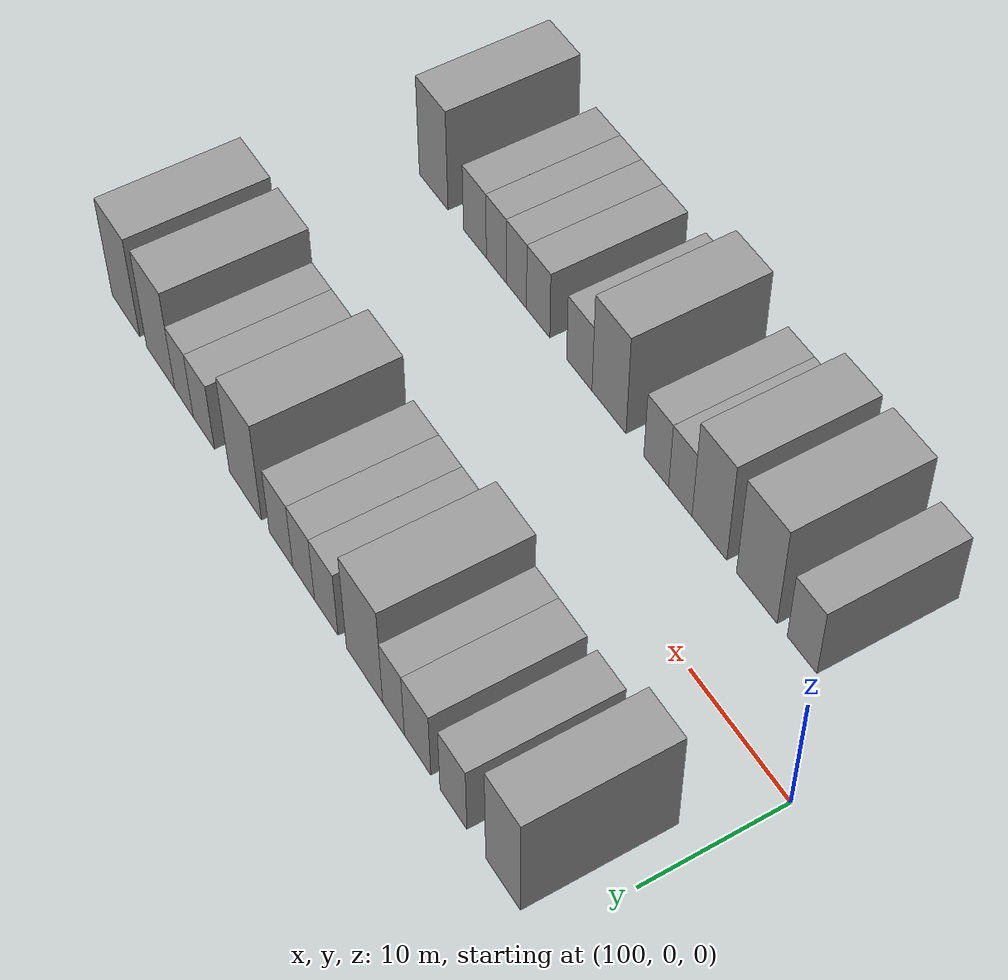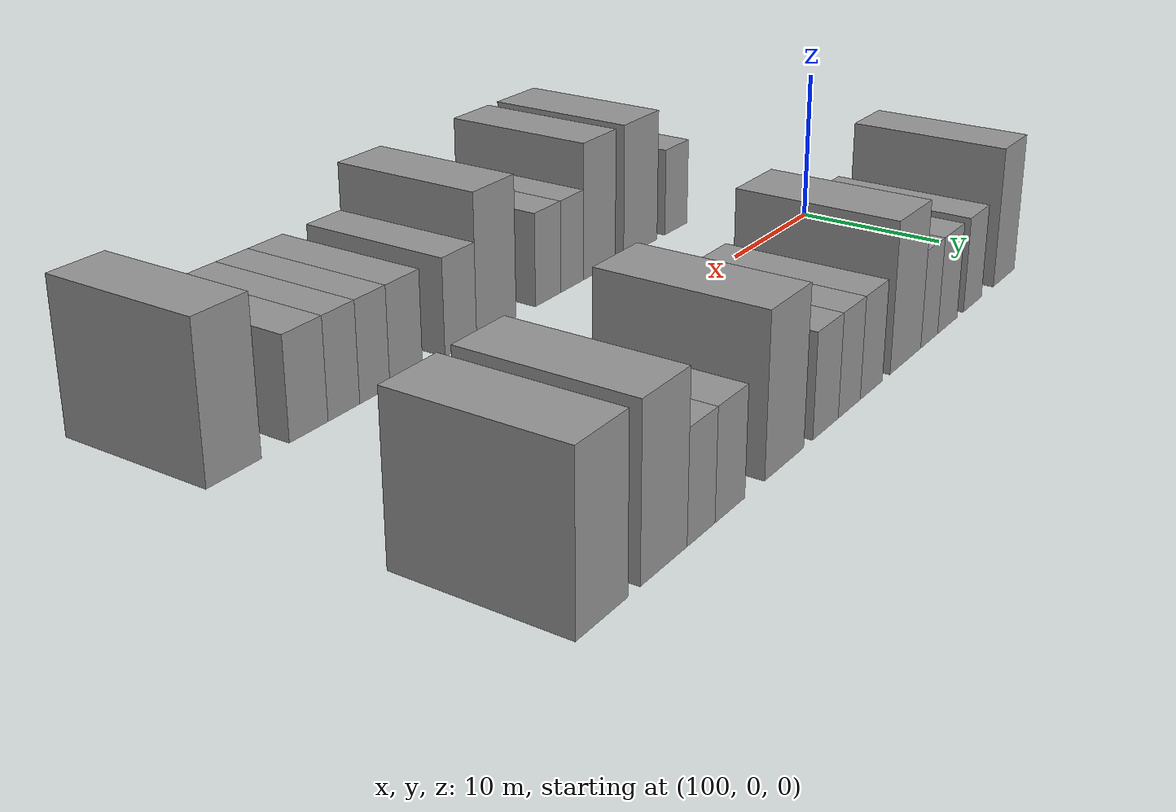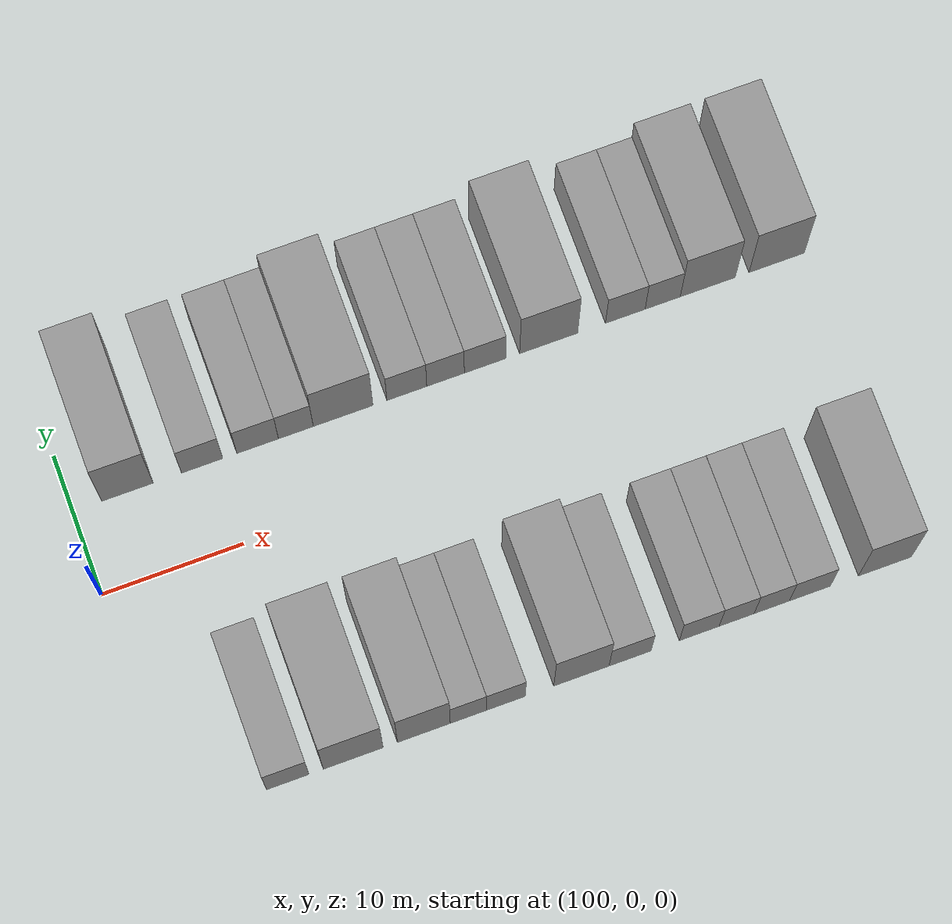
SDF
<sdf version="1.6">
 <world name="default">
  <model name="building_26">
   <static>1</static>
   <pose>103.8715 11.0000 0 0.000000 0.000000 1.570796</pose>
   <link name="link">
    <pose>0 0 4.50 0 0 0</pose>
    <collision name="collision"><geometry><box><size>10.0000 3.6191 9.0000</size></box></geometry></collision>
    <visual name="visual">
     <cast_shadows>0</cast_shadows>
     <geometry><box><size>10.0000 3.6191 9.0000</size></box></geometry>
     <material>
      <script>
       <uri>model://grey_wall/materials/scripts</uri>
       <uri>model://grey_wall/materials/textures</uri>
       <name>vrc/grey_wall</name>
      </script>
     </material>
    </visual>
   </link>
  </model>
  <model name="building_27">
   <static>1</static>
   <pose>109.1415 11.0000 0 0.000000 0.000000 1.570796</pose>
   <link name="link">
    <pose>0 0 3.00 0 0 0</pose>
    <collision name="collision"><geometry><box><size>10.0000 2.9207 6.0000</size></box></geometry></collision>
    <visual name="visual">
     <cast_shadows>0</cast_shadows>
     <geometry><box><size>10.0000 2.9207 6.0000</size></box></geometry>
     <material>
      <script>
       <uri>model://grey_wall/materials/scripts</uri>
       <uri>model://grey_wall/materials/textures</uri>
       <name>vrc/grey_wall</name>
      </script>
     </material>
    </visual>
   </link>
  </model>
  <model name="building_28">
   <static>1</static>
   <pose>113.0786 11.0000 0 0.000000 0.000000 1.570796</pose>
   <link name="link">
    <pose>0 0 3.00 0 0 0</pose>
    <collision name="collision"><geometry><box><size>10.0000 2.9536 6.0000</size></box></geometry></collision>
    <visual name="visual">
     <cast_shadows>0</cast_shadows>
     <geometry><box><size>10.0000 2.9536 6.0000</size></box></geometry>
     <material>
      <script>
       <uri>model://grey_wall/materials/scripts</uri>
       <uri>model://grey_wall/materials/textures</uri>
       <name>vrc/grey_wall</name>
      </script>
     </material>
    </visual>
   </link>
  </model>
  <model name="building_29">
   <static>1</static>
   <pose>115.7921 11.0000 0 0.000000 0.000000 1.570796</pose>
   <link name="link">
    <pose>0 0 3.00 0 0 0</pose>
    <collision name="collision"><geometry><box><size>10.0000 2.4733 6.0000</size></box></geometry></collision>
    <visual name="visual">
     <cast_shadows>0</cast_shadows>
     <geometry><box><size>10.0000 2.4733 6.0000</size></box></geometry>
     <material>
      <script>
       <uri>model://grey_wall/materials/scripts</uri>
       <uri>model://grey_wall/materials/textures</uri>
       <name>vrc/grey_wall</name>
      </script>
     </material>
    </visual>
   </link>
  </model>
  <model name="building_30">
   <static>1</static>
   <pose>119.1500 11.0000 0 0.000000 0.000000 1.570796</pose>
   <link name="link">
    <pose>0 0 4.50 0 0 0</pose>
    <collision name="collision"><geometry><box><size>10.0000 4.2424 9.0000</size></box></geometry></collision>
    <visual name="visual">
     <cast_shadows>0</cast_shadows>
     <geometry><box><size>10.0000 4.2424 9.0000</size></box></geometry>
     <material>
      <script>
       <uri>model://grey_wall/materials/scripts</uri>
       <uri>model://grey_wall/materials/textures</uri>
       <name>vrc/grey_wall</name>
      </script>
     </material>
    </visual>
   </link>
  </model>
  <model name="building_31">
   <static>1</static>
   <pose>123.6941 11.0000 0 0.000000 0.000000 1.570796</pose>
   <link name="link">
    <pose>0 0 3.00 0 0 0</pose>
    <collision name="collision"><geometry><box><size>10.0000 2.8459 6.0000</size></box></geometry></collision>
    <visual name="visual">
     <cast_shadows>0</cast_shadows>
     <geometry><box><size>10.0000 2.8459 6.0000</size></box></geometry>
     <material>
      <script>
       <uri>model://grey_wall/materials/scripts</uri>
       <uri>model://grey_wall/materials/textures</uri>
       <name>vrc/grey_wall</name>
      </script>
     </material>
    </visual>
   </link>
  </model>
  <model name="building_32">
   <static>1</static>
   <pose>126.4587 11.0000 0 0.000000 0.000000 1.570796</pose>
   <link name="link">
    <pose>0 0 3.00 0 0 0</pose>
    <collision name="collision"><geometry><box><size>10.0000 2.6832 6.0000</size></box></geometry></collision>
    <visual name="visual">
     <cast_shadows>0</cast_shadows>
     <geometry><box><size>10.0000 2.6832 6.0000</size></box></geometry>
     <material>
      <script>
       <uri>model://grey_wall/materials/scripts</uri>
       <uri>model://grey_wall/materials/textures</uri>
       <name>vrc/grey_wall</name>
      </script>
     </material>
    </visual>
   </link>
  </model>
  <model name="building_33">
   <static>1</static>
   <pose>129.2818 11.0000 0 0.000000 0.000000 1.570796</pose>
   <link name="link">
    <pose>0 0 3.00 0 0 0</pose>
    <collision name="collision"><geometry><box><size>10.0000 2.9631 6.0000</size></box></geometry></collision>
    <visual name="visual">
     <cast_shadows>0</cast_shadows>
     <geometry><box><size>10.0000 2.9631 6.0000</size></box></geometry>
     <material>
      <script>
       <uri>model://grey_wall/materials/scripts</uri>
       <uri>model://grey_wall/materials/textures</uri>
       <name>vrc/grey_wall</name>
      </script>
     </material>
    </visual>
   </link>
  </model>
  <model name="building_34">
   <static>1</static>
   <pose>133.8488 11.0000 0 0.000000 0.000000 1.570796</pose>
   <link name="link">
    <pose>0 0 4.50 0 0 0</pose>
    <collision name="collision"><geometry><box><size>10.0000 4.1709 9.0000</size></box></geometry></collision>
    <visual name="visual">
     <cast_shadows>0</cast_shadows>
     <geometry><box><size>10.0000 4.1709 9.0000</size></box></geometry>
     <material>
      <script>
       <uri>model://grey_wall/materials/scripts</uri>
       <uri>model://grey_wall/materials/textures</uri>
       <name>vrc/grey_wall</name>
      </script>
     </material>
    </visual>
   </link>
  </model>
  <model name="building_35">
   <static>1</static>
   <pose>139.3656 11.0000 0 0.000000 0.000000 1.570796</pose>
   <link name="link">
    <pose>0 0 3.00 0 0 0</pose>
    <collision name="collision"><geometry><box><size>10.0000 2.8626 6.0000</size></box></geometry></collision>
    <visual name="visual">
     <cast_shadows>0</cast_shadows>
     <geometry><box><size>10.0000 2.8626 6.0000</size></box></geometry>
     <material>
      <script>
       <uri>model://grey_wall/materials/scripts</uri>
       <uri>model://grey_wall/materials/textures</uri>
       <name>vrc/grey_wall</name>
      </script>
     </material>
    </visual>
   </link>
  </model>
  <model name="building_36">
   <static>1</static>
   <pose>142.0650 11.0000 0 0.000000 0.000000 1.570796</pose>
   <link name="link">
    <pose>0 0 3.00 0 0 0</pose>
    <collision name="collision"><geometry><box><size>10.0000 2.5362 6.0000</size></box></geometry></collision>
    <visual name="visual">
     <cast_shadows>0</cast_shadows>
     <geometry><box><size>10.0000 2.5362 6.0000</size></box></geometry>
     <material>
      <script>
       <uri>model://grey_wall/materials/scripts</uri>
       <uri>model://grey_wall/materials/textures</uri>
       <name>vrc/grey_wall</name>
      </script>
     </material>
    </visual>
   </link>
  </model>
  <model name="building_37">
   <static>1</static>
   <pose>145.3249 11.0000 0 0.000000 0.000000 1.570796</pose>
   <link name="link">
    <pose>0 0 4.50 0 0 0</pose>
    <collision name="collision"><geometry><box><size>10.0000 3.9838 9.0000</size></box></geometry></collision>
    <visual name="visual">
     <cast_shadows>0</cast_shadows>
     <geometry><box><size>10.0000 3.9838 9.0000</size></box></geometry>
     <material>
      <script>
       <uri>model://grey_wall/materials/scripts</uri>
       <uri>model://grey_wall/materials/textures</uri>
       <name>vrc/grey_wall</name>
      </script>
     </material>
    </visual>
   </link>
  </model>
  <model name="building_38">
   <static>1</static>
   <pose>150.3178 11.0000 0 0.000000 0.000000 1.570796</pose>
   <link name="link">
    <pose>0 0 4.50 0 0 0</pose>
    <collision name="collision"><geometry><box><size>10.0000 4.0018 9.0000</size></box></geometry></collision>
    <visual name="visual">
     <cast_shadows>0</cast_shadows>
     <geometry><box><size>10.0000 4.0018 9.0000</size></box></geometry>
     <material>
      <script>
       <uri>model://grey_wall/materials/scripts</uri>
       <uri>model://grey_wall/materials/textures</uri>
       <name>vrc/grey_wall</name>
      </script>
     </material>
    </visual>
   </link>
  </model>
  <model name="building_76">
   <static>1</static>
   <pose>107.4969 -11.0000 0 0.000000 0.000000 1.570796</pose>
   <link name="link">
    <pose>0 0 3.00 0 0 0</pose>
    <collision name="collision"><geometry><box><size>10.0000 2.9445 6.0000</size></box></geometry></collision>
    <visual name="visual">
     <cast_shadows>0</cast_shadows>
     <geometry><box><size>10.0000 2.9445 6.0000</size></box></geometry>
     <material>
      <script>
       <uri>model://grey_wall/materials/scripts</uri>
       <uri>model://grey_wall/materials/textures</uri>
       <name>vrc/grey_wall</name>
      </script>
     </material>
    </visual>
   </link>
  </model>
  <model name="building_77">
   <static>1</static>
   <pose>112.0538 -11.0000 0 0.000000 0.000000 1.570796</pose>
   <link name="link">
    <pose>0 0 4.50 0 0 0</pose>
    <collision name="collision"><geometry><box><size>10.0000 4.1693 9.0000</size></box></geometry></collision>
    <visual name="visual">
     <cast_shadows>0</cast_shadows>
     <geometry><box><size>10.0000 4.1693 9.0000</size></box></geometry>
     <material>
      <script>
       <uri>model://grey_wall/materials/scripts</uri>
       <uri>model://grey_wall/materials/textures</uri>
       <name>vrc/grey_wall</name>
      </script>
     </material>
    </visual>
   </link>
  </model>
  <model name="building_78">
   <static>1</static>
   <pose>116.9832 -11.0000 0 0.000000 0.000000 1.570796</pose>
   <link name="link">
    <pose>0 0 4.50 0 0 0</pose>
    <collision name="collision"><geometry><box><size>10.0000 3.6896 9.0000</size></box></geometry></collision>
    <visual name="visual">
     <cast_shadows>0</cast_shadows>
     <geometry><box><size>10.0000 3.6896 9.0000</size></box></geometry>
     <material>
      <script>
       <uri>model://grey_wall/materials/scripts</uri>
       <uri>model://grey_wall/materials/textures</uri>
       <name>vrc/grey_wall</name>
      </script>
     </material>
    </visual>
   </link>
  </model>
  <model name="building_79">
   <static>1</static>
   <pose>120.0943 -11.0000 0 0.000000 0.000000 1.570796</pose>
   <link name="link">
    <pose>0 0 3.00 0 0 0</pose>
    <collision name="collision"><geometry><box><size>10.0000 2.5326 6.0000</size></box></geometry></collision>
    <visual name="visual">
     <cast_shadows>0</cast_shadows>
     <geometry><box><size>10.0000 2.5326 6.0000</size></box></geometry>
     <material>
      <script>
       <uri>model://grey_wall/materials/scripts</uri>
       <uri>model://grey_wall/materials/textures</uri>
       <name>vrc/grey_wall</name>
      </script>
     </material>
    </visual>
   </link>
  </model>
  <model name="building_80">
   <static>1</static>
   <pose>122.7240 -11.0000 0 0.000000 0.000000 1.570796</pose>
   <link name="link">
    <pose>0 0 3.00 0 0 0</pose>
    <collision name="collision"><geometry><box><size>10.0000 2.7267 6.0000</size></box></geometry></collision>
    <visual name="visual">
     <cast_shadows>0</cast_shadows>
     <geometry><box><size>10.0000 2.7267 6.0000</size></box></geometry>
     <material>
      <script>
       <uri>model://grey_wall/materials/scripts</uri>
       <uri>model://grey_wall/materials/textures</uri>
       <name>vrc/grey_wall</name>
      </script>
     </material>
    </visual>
   </link>
  </model>
  <model name="building_81">
   <static>1</static>
   <pose>128.0351 -11.0000 0 0.000000 0.000000 1.570796</pose>
   <link name="link">
    <pose>0 0 4.50 0 0 0</pose>
    <collision name="collision"><geometry><box><size>10.0000 3.8955 9.0000</size></box></geometry></collision>
    <visual name="visual">
     <cast_shadows>0</cast_shadows>
     <geometry><box><size>10.0000 3.8955 9.0000</size></box></geometry>
     <material>
      <script>
       <uri>model://grey_wall/materials/scripts</uri>
       <uri>model://grey_wall/materials/textures</uri>
       <name>vrc/grey_wall</name>
      </script>
     </material>
    </visual>
   </link>
  </model>
  <model name="building_82">
   <static>1</static>
   <pose>131.4656 -11.0000 0 0.000000 0.000000 1.570796</pose>
   <link name="link">
    <pose>0 0 3.00 0 0 0</pose>
    <collision name="collision"><geometry><box><size>10.0000 2.9656 6.0000</size></box></geometry></collision>
    <visual name="visual">
     <cast_shadows>0</cast_shadows>
     <geometry><box><size>10.0000 2.9656 6.0000</size></box></geometry>
     <material>
      <script>
       <uri>model://grey_wall/materials/scripts</uri>
       <uri>model://grey_wall/materials/textures</uri>
       <name>vrc/grey_wall</name>
      </script>
     </material>
    </visual>
   </link>
  </model>
  <model name="building_83">
   <static>1</static>
   <pose>136.3592 -11.0000 0 0.000000 0.000000 1.570796</pose>
   <link name="link">
    <pose>0 0 3.00 0 0 0</pose>
    <collision name="collision"><geometry><box><size>10.0000 2.8217 6.0000</size></box></geometry></collision>
    <visual name="visual">
     <cast_shadows>0</cast_shadows>
     <geometry><box><size>10.0000 2.8217 6.0000</size></box></geometry>
     <material>
      <script>
       <uri>model://grey_wall/materials/scripts</uri>
       <uri>model://grey_wall/materials/textures</uri>
       <name>vrc/grey_wall</name>
      </script>
     </material>
    </visual>
   </link>
  </model>
  <model name="building_84">
   <static>1</static>
   <pose>139.0121 -11.0000 0 0.000000 0.000000 1.570796</pose>
   <link name="link">
    <pose>0 0 3.00 0 0 0</pose>
    <collision name="collision"><geometry><box><size>10.0000 2.4841 6.0000</size></box></geometry></collision>
    <visual name="visual">
     <cast_shadows>0</cast_shadows>
     <geometry><box><size>10.0000 2.4841 6.0000</size></box></geometry>
     <material>
      <script>
       <uri>model://grey_wall/materials/scripts</uri>
       <uri>model://grey_wall/materials/textures</uri>
       <name>vrc/grey_wall</name>
      </script>
     </material>
    </visual>
   </link>
  </model>
  <model name="building_85">
   <static>1</static>
   <pose>141.5066 -11.0000 0 0.000000 0.000000 1.570796</pose>
   <link name="link">
    <pose>0 0 3.00 0 0 0</pose>
    <collision name="collision"><geometry><box><size>10.0000 2.5048 6.0000</size></box></geometry></collision>
    <visual name="visual">
     <cast_shadows>0</cast_shadows>
     <geometry><box><size>10.0000 2.5048 6.0000</size></box></geometry>
     <material>
      <script>
       <uri>model://grey_wall/materials/scripts</uri>
       <uri>model://grey_wall/materials/textures</uri>
       <name>vrc/grey_wall</name>
      </script>
     </material>
    </visual>
   </link>
  </model>
  <model name="building_86">
   <static>1</static>
   <pose>144.2179 -11.0000 0 0.000000 0.000000 1.570796</pose>
   <link name="link">
    <pose>0 0 3.00 0 0 0</pose>
    <collision name="collision"><geometry><box><size>10.0000 2.9177 6.0000</size></box></geometry></collision>
    <visual name="visual">
     <cast_shadows>0</cast_shadows>
     <geometry><box><size>10.0000 2.9177 6.0000</size></box></geometry>
     <material>
      <script>
       <uri>model://grey_wall/materials/scripts</uri>
       <uri>model://grey_wall/materials/textures</uri>
       <name>vrc/grey_wall</name>
      </script>
     </material>
    </visual>
   </link>
  </model>
  <model name="building_87">
   <static>1</static>
   <pose>149.5673 -11.0000 0 0.000000 0.000000 1.570796</pose>
   <link name="link">
    <pose>0 0 4.50 0 0 0</pose>
    <collision name="collision"><geometry><box><size>10.0000 3.7812 9.0000</size></box></geometry></collision>
    <visual name="visual">
     <cast_shadows>0</cast_shadows>
     <geometry><box><size>10.0000 3.7812 9.0000</size></box></geometry>
     <material>
      <script>
       <uri>model://grey_wall/materials/scripts</uri>
       <uri>model://grey_wall/materials/textures</uri>
       <name>vrc/grey_wall</name>
      </script>
     </material>
    </visual>
   </link>
  </model>
 </world>
</sdf>
